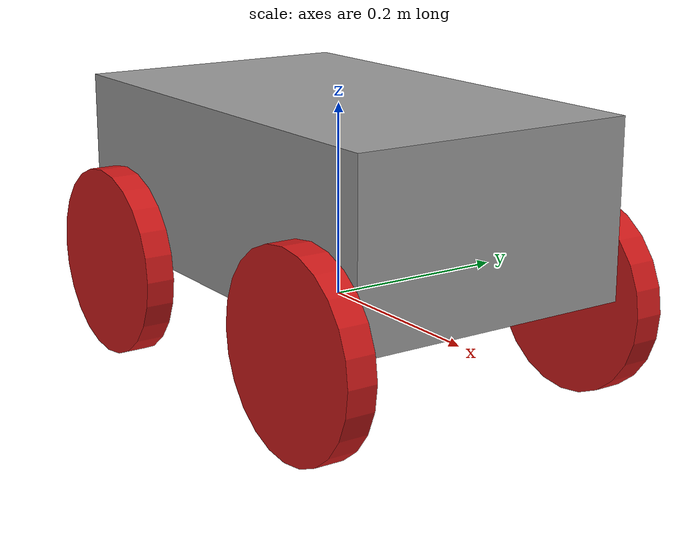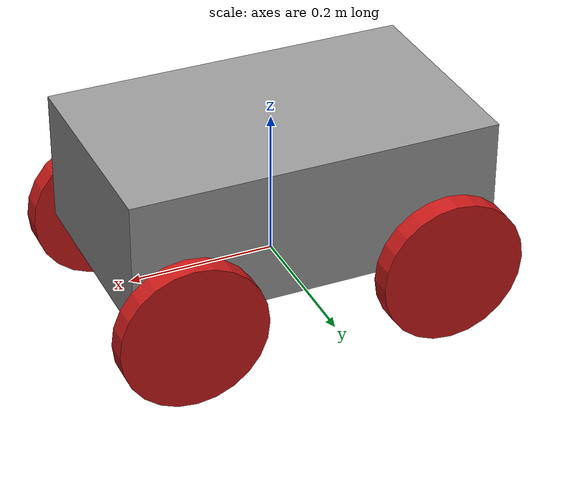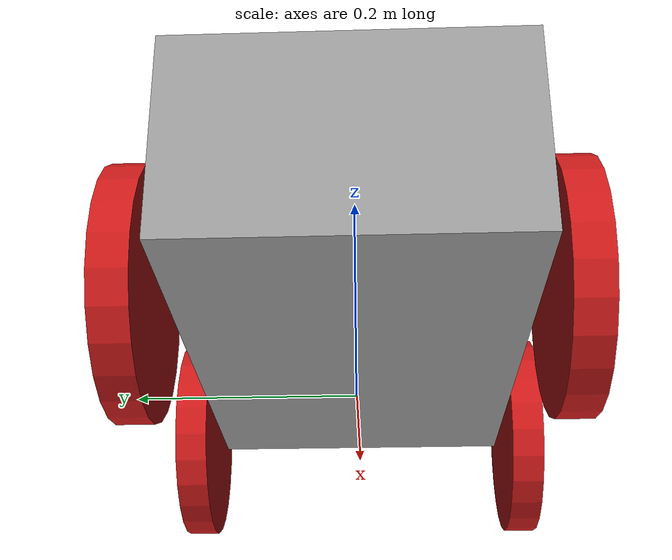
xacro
<robot xmlns:xacro="http://www.ros.org/wiki/xacro" name="basic_rover">

  <xacro:include filename="inertial_macros.xacro"/>

  <!-- Materials -->
  <material name="gray"><color rgba="0.6 0.6 0.6 1.0"/></material>
  <material name="black"><color rgba="0.05 0.05 0.05 1.0"/></material>
  <material name="red"><color rgba="0.8 0.1 0.1 1.0"/></material>
  <material name="blue"><color rgba="0.2 0.2 1.0 1.0"/></material>

  <!-- Dimensions (easy to tweak) -->
  <xacro:property name="base_x" value="0.50"/>
  <xacro:property name="base_y" value="0.30"/>
  <xacro:property name="base_z" value="0.18"/>
  <xacro:property name="base_z_origin" value="0.12"/>

  <xacro:property name="wheel_r" value="0.10"/>
  <xacro:property name="wheel_w" value="0.03"/>

  <!-- Wheel placement (relative to base_link origin) -->
  <xacro:property name="wheel_x_front" value="0.18"/>
  <xacro:property name="wheel_x_rear"  value="-0.18"/>
  <xacro:property name="wheel_y" value="${base_y/2 + wheel_w/2}"/>

  <!-- Put wheel centers slightly below base collision bottom (base bottom is z=0.0) -->
  <xacro:property name="wheel_z" value="0.02"/>

  <!-- BASE LINK (chassis) -->
  <link name="base_link">
    <visual>
      <origin xyz="0 0 ${base_z_origin}" rpy="0 0 0"/>
      <geometry>
        <box size="${base_x} ${base_y} ${base_z}"/>
      </geometry>
      <material name="gray"/>
    </visual>

    <collision>
      <origin xyz="0 0 ${base_z_origin}" rpy="0 0 0"/>
      <geometry>
        <box size="${base_x} ${base_y} ${base_z}"/>
      </geometry>
    </collision>

    <!-- Use your macro for inertia -->
    <xacro:inertial_box mass="10.0" x="${base_x}" y="${base_y}" z="${base_z}">
      <origin xyz="0 0 ${base_z/2}" rpy="0 0 0"/>
    </xacro:inertial_box>
  </link>

  <gazebo reference="base_link">
    <material>Gazebo/Grey</material>
  </gazebo>

    <!-- BASE FOOTPRINT (ground-projected base frame for SLAM/Nav2) -->
  <joint name="base_footprint_joint" type="fixed">
    <parent link="base_link"/>
    <child link="base_footprint"/>
    <origin xyz="0 0 0" rpy="0 0 0 "/>
  </joint>

  <link name="base_footprint">
  </link>

  <!-- Helper macro for a wheel -->
  <xacro:macro name="wheel_link" params="name">
    <link name="${name}">
      <visual>
        <!-- Rotate cylinder so it spins about Y (axle along Y) -->
        <origin xyz="0 0 0" rpy="${pi/2} 0 0"/>
        <geometry>
          <cylinder radius="${wheel_r}" length="${wheel_w}"/>
        </geometry>
        <material name="red"/>
      </visual>

      <collision>
        <origin xyz="0 0 0" rpy="${pi/2} 0 0"/>
        <geometry>
          <cylinder radius="${wheel_r}" length="${wheel_w}"/>
        </geometry>
      </collision>

      <xacro:inertial_cylinder mass="0.5" length="${wheel_w}" radius="${wheel_r}">
        <origin xyz="0 0 0" rpy="0 0 0"/>
      </xacro:inertial_cylinder>
    </link>

    <gazebo reference="${name}">
      <material>Gazebo/Red</material>
    </gazebo>
  </xacro:macro>

  <!-- Create 4 wheels -->
  <xacro:wheel_link name="front_left_wheel"/>
  <xacro:wheel_link name="front_right_wheel"/>
  <xacro:wheel_link name="rear_left_wheel"/>
  <xacro:wheel_link name="rear_right_wheel"/>

  <!-- Joints -->
  <!-- NOTE: Axis set to Y so wheel rotates correctly with the visual rotation above -->
  <joint name="front_left_wheel_joint" type="continuous">
    <parent link="base_link"/>
    <child link="front_left_wheel"/>
    <origin xyz="${wheel_x_front} ${wheel_y} ${wheel_z}" rpy="0 0 0"/>
    <axis xyz="0 1 0"/>
  </joint>

  <joint name="front_right_wheel_joint" type="continuous">
    <parent link="base_link"/>
    <child link="front_right_wheel"/>
    <origin xyz="${wheel_x_front} -${wheel_y} ${wheel_z}" rpy="0 0 0"/>
    <axis xyz="0 1 0"/>
  </joint>

  <joint name="rear_left_wheel_joint" type="continuous">
    <parent link="base_link"/>
    <child link="rear_left_wheel"/>
    <origin xyz="${wheel_x_rear} ${wheel_y} ${wheel_z}" rpy="0 0 0"/>
    <axis xyz="0 1 0"/>
  </joint>

  <joint name="rear_right_wheel_joint" type="continuous">
    <parent link="base_link"/>
    <child link="rear_right_wheel"/>
    <origin xyz="${wheel_x_rear} -${wheel_y} ${wheel_z}" rpy="0 0 0"/>
    <axis xyz="0 1 0"/>
  </joint>

  <!-- Make REAR wheels (passive) very low friction so they don't fight the driven front wheels -->
  <gazebo reference="rear_left_wheel">
    <mu1 value="0.0001"/>
    <mu2 value="0.0001"/>
    <slip1 value="1.0"/>
    <slip2 value="1.0"/>
  </gazebo>

  <gazebo reference="rear_right_wheel">
    <mu1 value="0.0001"/>
    <mu2 value="0.0001"/>
    <slip1 value="1.0"/>
    <slip2 value="1.0"/>
  </gazebo>

</robot>

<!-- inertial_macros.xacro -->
<robot xmlns:xacro="http://www.ros.org/wiki/xacro" name="inertial_macros">

  <!-- Sphere inertia -->
  <xacro:macro name="inertial_sphere" params="mass radius *origin">
    <inertial>
      <xacro:insert_block name="origin"/>
      <mass value="${mass}" />
      <inertia
        ixx="${(2.0/5.0) * mass * (radius*radius)}" ixy="0.0" ixz="0.0"
        iyy="${(2.0/5.0) * mass * (radius*radius)}" iyz="0.0"
        izz="${(2.0/5.0) * mass * (radius*radius)}" />
    </inertial>
  </xacro:macro>

  <!-- Box inertia (about link frame axes) -->
  <xacro:macro name="inertial_box" params="mass x y z *origin">
    <inertial>
      <xacro:insert_block name="origin"/>
      <mass value="${mass}" />
      <inertia
        ixx="${(1.0/12.0) * mass * (y*y + z*z)}" ixy="0.0" ixz="0.0"
        iyy="${(1.0/12.0) * mass * (x*x + z*z)}" iyz="0.0"
        izz="${(1.0/12.0) * mass * (x*x + y*y)}" />
    </inertial>
  </xacro:macro>

  <!-- Cylinder inertia (assumes cylinder axis aligned with link Z axis) -->
  <xacro:macro name="inertial_cylinder" params="mass length radius *origin">
    <inertial>
      <xacro:insert_block name="origin"/>
      <mass value="${mass}" />
      <inertia
        ixx="${(1.0/12.0) * mass * (3*radius*radius + length*length)}" ixy="0.0" ixz="0.0"
        iyy="${(1.0/12.0) * mass * (3*radius*radius + length*length)}" iyz="0.0"
        izz="${(1.0/2.0) * mass * (radius*radius)}" />
    </inertial>
  </xacro:macro>

  <xacro:macro name="inertial_cylinder_y" params="mass length radius *origin">
    <inertial>
      <xacro:insert_block name="origin"/>
      <mass value="${mass}" />
      <!-- For a cylinder, inertia about its axis is (1/2) m r^2.
           If axis is Y, then Iyy is the axial inertia. -->
      <inertia
        ixx="${(1.0/12.0) * mass * (3*radius*radius + length*length)}" ixy="0.0" ixz="0.0"
        iyy="${(1.0/2.0) * mass * (radius*radius)}" iyz="0.0"
        izz="${(1.0/12.0) * mass * (3*radius*radius + length*length)}" />
    </inertial>
  </xacro:macro>

</robot>
